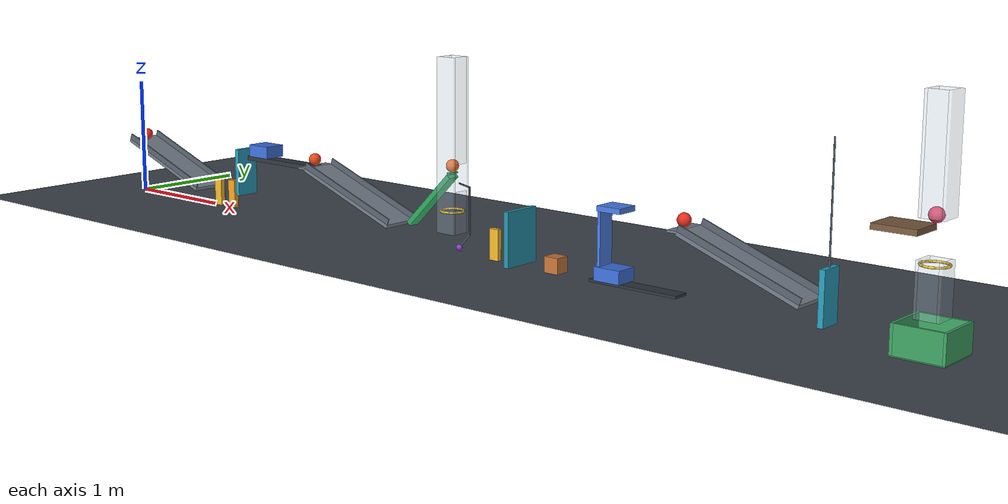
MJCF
<mujoco model="corrected_assisted_chain_reaction">
  <compiler angle="degree" autolimits="true" inertiafromgeom="auto"/>
  <option timestep="0.002" gravity="0 0 -9.81" integrator="implicitfast" solver="Newton" iterations="100" cone="elliptic"/>
  <size njmax="3000" nconmax="1000"/>
  <visual>
    <headlight ambient="0.45 0.45 0.45" diffuse="0.7 0.7 0.7" specular="0.2 0.2 0.2"/>
    <map znear="0.01" zfar="40"/>
  </visual>

  <worldbody>
    <light name="main_light" pos="4 -4 7" dir="0 0 -1" directional="true"/>
    <camera name="overview" pos="4 -10 6" xyaxes="1 0 0 0 0.45 0.893"/>
    <geom name="floor" type="plane" size="12 5 0.1" friction="0.70 0.001 0.0001" condim="3" solref="0.006 0.6901" solimp="0.95 0.99 0.001" rgba="0.25 0.28 0.31 1"/>

    <body name="ramp1" pos="0 0 0.492020143" quat="0.984807753 0 0.173648178 0">
      <geom name="ramp1_surface" type="box" pos="0.5 0 -0.015" size="0.50 0.15 0.015" friction="0.70 0.001 0.0001" condim="3" solref="0.006 0.6901" solimp="0.95 0.99 0.001" rgba="0.45 0.49 0.54 1"/>
      <geom name="ramp1_left_curb" type="box" pos="0.5 0.145 0.025" size="0.50 0.005 0.025" friction="0.70 0.001 0.0001" condim="3" solref="0.006 0.6901" solimp="0.95 0.99 0.001" rgba="0.35 0.39 0.44 1"/>
      <geom name="ramp1_right_curb" type="box" pos="0.5 -0.145 0.025" size="0.50 0.005 0.025" friction="0.70 0.001 0.0001" condim="3" solref="0.006 0.6901" solimp="0.95 0.99 0.001" rgba="0.35 0.39 0.44 1"/>
    </body>

    <body name="ball1" pos="0.054688715 0 0.525324168">
      <freejoint name="ball1_free"/>
      <geom name="ball1_sphere" type="sphere" size="0.05" mass="0.20" friction="0.70 0.001 0.0001" condim="3" solref="0.006 0.6901" solimp="0.95 0.99 0.001" rgba="0.90 0.18 0.12 1"/>
    </body>

    <!-- Ramp1 exit to domino1's near face: 0.10 m.
         Domino1 to domino2 centre spacing: 0.18 m. -->
    <body name="domino1" pos="1.079692621 0 0.12">
      <freejoint name="domino1_free"/>
      <geom name="domino1_box" type="box" size="0.04 0.02 0.12" mass="0.25" friction="0.70 0.001 0.0001" condim="3" solref="0.006 0.6901" solimp="0.95 0.99 0.001" rgba="0.95 0.72 0.16 1"/>
    </body>

    <body name="domino2" pos="1.259692621 0 0.12">
      <freejoint name="domino2_free"/>
      <geom name="domino2_box" type="box" size="0.04 0.02 0.12" mass="0.25" friction="0.70 0.001 0.0001" condim="3" solref="0.006 0.6901" solimp="0.95 0.99 0.001" rgba="0.95 0.64 0.12 1"/>
    </body>

    <!-- Clockwise viewed from above. The panel's lower half receives
         domino2 and its upper portion strikes cart1. -->
    <body name="flap1" pos="1.439692621 -0.10 0.34">
      <joint name="flap1_hinge" type="hinge" axis="0 0 -1" range="0 65" damping="0.04" armature="0.0001" solreflimit="0.004 1"/>
      <geom name="flap1_panel" type="box" pos="0 0.10 0" size="0.02 0.10 0.20" mass="0.30" friction="0.70 0.001 0.0001" condim="3" solref="0.006 0.6901" solimp="0.95 0.99 0.001" rgba="0.15 0.62 0.74 1"/>
    </body>

    <!-- Raised enough to clear ramp2's horizontal landing.
         Initial front-face-to-ball separation is 0.45 m. -->
    <body name="cart1" pos="1.709692621 0 0.550020143">
      <joint name="cart1_slide" type="slide" axis="1 0 0" range="0 0.53" damping="0.20" solreflimit="0.004 1"/>
      <geom name="cart1_box" type="box" size="0.11 0.09 0.05" mass="0.50" friction="0.70 0.001 0.0001" condim="3" solref="0.006 0.6901" solimp="0.95 0.99 0.001" rgba="0.24 0.44 0.86 1"/>
    </body>

    <body name="cart1_track" pos="1.934692621 0 0.475">
      <geom name="cart1_track_beam" type="box" size="0.40 0.06 0.018" contype="0" conaffinity="0" friction="0.70 0.001 0.0001" rgba="0.18 0.21 0.25 1"/>
    </body>

    <body name="ramp2" pos="2.359692621 0 0.492020143" quat="0.984807753 0 0.173648178 0">
      <geom name="ramp2_surface" type="box" pos="0.5 0 -0.015" size="0.50 0.15 0.015" friction="0.70 0.001 0.0001" condim="3" solref="0.006 0.6901" solimp="0.95 0.99 0.001" rgba="0.45 0.49 0.54 1"/>
      <geom name="ramp2_high_landing" type="box" pos="-0.034851544 0 -0.021198347" quat="0.984807753 0 -0.173648178 0" size="0.04 0.15 0.008" friction="0.70 0.001 0.0001" condim="3" solref="0.006 0.6901" solimp="0.95 0.99 0.001" rgba="0.45 0.49 0.54 1"/>
      <geom name="ramp2_left_curb" type="box" pos="0.5 0.145 0.025" size="0.50 0.005 0.025" friction="0.70 0.001 0.0001" condim="3" solref="0.006 0.6901" solimp="0.95 0.99 0.001" rgba="0.35 0.39 0.44 1"/>
      <geom name="ramp2_right_curb" type="box" pos="0.5 -0.145 0.025" size="0.50 0.005 0.025" friction="0.70 0.001 0.0001" condim="3" solref="0.006 0.6901" solimp="0.95 0.99 0.001" rgba="0.35 0.39 0.44 1"/>
    </body>

    <body name="ball2" pos="2.319692621 0 0.542020143">
      <freejoint name="ball2_free"/>
      <geom name="ball2_sphere" type="sphere" size="0.05" mass="0.20" friction="0.70 0.001 0.0001" condim="3" solref="0.006 0.6901" solimp="0.95 0.99 0.001" rgba="0.90 0.28 0.12 1"/>
    </body>

    <body name="lever1" pos="3.645659412 0 0.377132034" quat="0.923879533 0 -0.382683432 0">
      <inertial pos="0 0 0" mass="0.50" diaginertia="0.000483333 0.015066667 0.015416667"/>
      <joint name="lever1_hinge" type="hinge" axis="0 -1 0" range="0 45" damping="0.04" armature="0.0001" solreflimit="0.004 1"/>
      <geom name="lever1_beam" type="box" size="0.30 0.05 0.02" friction="0.70 0.001 0.0001" condim="3" solref="0.006 0.6901" solimp="0.95 0.99 0.001" rgba="0.18 0.66 0.36 1"/>
      <geom name="lever1_launch_pad" type="box" pos="0.315556349 0 0.015556349" quat="0.923879533 0 0.382683432 0" size="0.015 0.045 0.006" friction="0.70 0.001 0.0001" condim="3" solref="0.006 0.6901" solimp="0.95 0.99 0.001" rgba="0.24 0.76 0.42 1"/>
    </body>

    <body name="ball3" pos="3.857791446 0 0.667264068">
      <freejoint name="ball3_free"/>
      <geom name="ball3_sphere" type="sphere" size="0.05" mass="0.20" friction="0.70 0.001 0.0001" condim="3" solref="0.006 0.6901" solimp="0.95 0.99 0.001" rgba="0.96 0.42 0.13 1"/>
    </body>

    <!-- Split x guides clear the lever and launch pad.
         The pendulum's bent rod passes outside these guides. -->
    <body name="ball3_guides" pos="3.857791446 0 0">
      <geom name="ball3_guides_y_positive" type="box" pos="0 0.075 0.825" size="0.085 0.010 0.675" friction="0.70 0.001 0.0001" condim="3" solref="0.006 0.6901" solimp="0.95 0.99 0.001" rgba="0.70 0.78 0.86 0.28"/>
      <geom name="ball3_guides_y_negative" type="box" pos="0 -0.075 0.825" size="0.085 0.010 0.675" friction="0.70 0.001 0.0001" condim="3" solref="0.006 0.6901" solimp="0.95 0.99 0.001" rgba="0.70 0.78 0.86 0.28"/>
      <geom name="ball3_guides_x_positive_upper" type="box" pos="0.075 0 1.095" size="0.010 0.065 0.405" friction="0.70 0.001 0.0001" condim="3" solref="0.006 0.6901" solimp="0.95 0.99 0.001" rgba="0.70 0.78 0.86 0.28"/>
      <geom name="ball3_guides_x_negative_upper" type="box" pos="-0.075 0 1.095" size="0.010 0.065 0.405" friction="0.70 0.001 0.0001" condim="3" solref="0.006 0.6901" solimp="0.95 0.99 0.001" rgba="0.70 0.78 0.86 0.28"/>
      <geom name="ball3_guides_x_positive_lower" type="box" pos="0.075 0 0.3125" size="0.010 0.065 0.1625" friction="0.70 0.001 0.0001" condim="3" solref="0.006 0.6901" solimp="0.95 0.99 0.001" rgba="0.70 0.78 0.86 0.28"/>
      <geom name="ball3_guides_x_negative_lower" type="box" pos="-0.075 0 0.3125" size="0.010 0.065 0.1625" friction="0.70 0.001 0.0001" condim="3" solref="0.006 0.6901" solimp="0.95 0.99 0.001" rgba="0.70 0.78 0.86 0.28"/>
    </body>

    <!-- Ring1 is 0.35 m below ball3's initial centre. -->
    <body name="ring1" pos="3.857791446 0 0.317264068">
      <geom name="ring1_segment01" type="capsule" fromto="0.089725 0 0 0.082894 0.034336 0" size="0.008" friction="0.70 0.001 0.0001" condim="3" solref="0.006 0.6901" solimp="0.95 0.99 0.001" rgba="0.95 0.80 0.20 1"/>
      <geom name="ring1_segment02" type="capsule" fromto="0.082894 0.034336 0 0.063446 0.063446 0" size="0.008" friction="0.70 0.001 0.0001" condim="3" solref="0.006 0.6901" solimp="0.95 0.99 0.001" rgba="0.95 0.80 0.20 1"/>
      <geom name="ring1_segment03" type="capsule" fromto="0.063446 0.063446 0 0.034336 0.082894 0" size="0.008" friction="0.70 0.001 0.0001" condim="3" solref="0.006 0.6901" solimp="0.95 0.99 0.001" rgba="0.95 0.80 0.20 1"/>
      <geom name="ring1_segment04" type="capsule" fromto="0.034336 0.082894 0 0 0.089725 0" size="0.008" friction="0.70 0.001 0.0001" condim="3" solref="0.006 0.6901" solimp="0.95 0.99 0.001" rgba="0.95 0.80 0.20 1"/>
      <geom name="ring1_segment05" type="capsule" fromto="0 0.089725 0 -0.034336 0.082894 0" size="0.008" friction="0.70 0.001 0.0001" condim="3" solref="0.006 0.6901" solimp="0.95 0.99 0.001" rgba="0.95 0.80 0.20 1"/>
      <geom name="ring1_segment06" type="capsule" fromto="-0.034336 0.082894 0 -0.063446 0.063446 0" size="0.008" friction="0.70 0.001 0.0001" condim="3" solref="0.006 0.6901" solimp="0.95 0.99 0.001" rgba="0.95 0.80 0.20 1"/>
      <geom name="ring1_segment07" type="capsule" fromto="-0.063446 0.063446 0 -0.082894 0.034336 0" size="0.008" friction="0.70 0.001 0.0001" condim="3" solref="0.006 0.6901" solimp="0.95 0.99 0.001" rgba="0.95 0.80 0.20 1"/>
      <geom name="ring1_segment08" type="capsule" fromto="-0.082894 0.034336 0 -0.089725 0 0" size="0.008" friction="0.70 0.001 0.0001" condim="3" solref="0.006 0.6901" solimp="0.95 0.99 0.001" rgba="0.95 0.80 0.20 1"/>
      <geom name="ring1_segment09" type="capsule" fromto="-0.089725 0 0 -0.082894 -0.034336 0" size="0.008" friction="0.70 0.001 0.0001" condim="3" solref="0.006 0.6901" solimp="0.95 0.99 0.001" rgba="0.95 0.80 0.20 1"/>
      <geom name="ring1_segment10" type="capsule" fromto="-0.082894 -0.034336 0 -0.063446 -0.063446 0" size="0.008" friction="0.70 0.001 0.0001" condim="3" solref="0.006 0.6901" solimp="0.95 0.99 0.001" rgba="0.95 0.80 0.20 1"/>
      <geom name="ring1_segment11" type="capsule" fromto="-0.063446 -0.063446 0 -0.034336 -0.082894 0" size="0.008" friction="0.70 0.001 0.0001" condim="3" solref="0.006 0.6901" solimp="0.95 0.99 0.001" rgba="0.95 0.80 0.20 1"/>
      <geom name="ring1_segment12" type="capsule" fromto="-0.034336 -0.082894 0 0 -0.089725 0" size="0.008" friction="0.70 0.001 0.0001" condim="3" solref="0.006 0.6901" solimp="0.95 0.99 0.001" rgba="0.95 0.80 0.20 1"/>
      <geom name="ring1_segment13" type="capsule" fromto="0 -0.089725 0 0.034336 -0.082894 0" size="0.008" friction="0.70 0.001 0.0001" condim="3" solref="0.006 0.6901" solimp="0.95 0.99 0.001" rgba="0.95 0.80 0.20 1"/>
      <geom name="ring1_segment14" type="capsule" fromto="0.034336 -0.082894 0 0.063446 -0.063446 0" size="0.008" friction="0.70 0.001 0.0001" condim="3" solref="0.006 0.6901" solimp="0.95 0.99 0.001" rgba="0.95 0.80 0.20 1"/>
      <geom name="ring1_segment15" type="capsule" fromto="0.063446 -0.063446 0 0.082894 -0.034336 0" size="0.008" friction="0.70 0.001 0.0001" condim="3" solref="0.006 0.6901" solimp="0.95 0.99 0.001" rgba="0.95 0.80 0.20 1"/>
      <geom name="ring1_segment16" type="capsule" fromto="0.082894 -0.034336 0 0.089725 0 0" size="0.008" friction="0.70 0.001 0.0001" condim="3" solref="0.006 0.6901" solimp="0.95 0.99 0.001" rgba="0.95 0.80 0.20 1"/>
    </body>

    <body name="pendulum1" pos="3.927791446 0 0.540338244">
      <joint name="pendulum1_hinge" type="hinge" axis="0 -1 0" range="0 40" damping="0.04" armature="0.0001" solreflimit="0.004 1"/>
      <geom name="pendulum1_rod_upper" type="capsule" fromto="0 0 0 0 0.12 -0.05" size="0.006" mass="0.005" friction="0.70 0.001 0.0001" condim="3" solref="0.006 0.6901" solimp="0.95 0.99 0.001" rgba="0.34 0.37 0.42 1"/>
      <geom name="pendulum1_rod_middle" type="capsule" fromto="0 0.12 -0.05 0 0.12 -0.42" size="0.006" mass="0.040" friction="0.70 0.001 0.0001" condim="3" solref="0.006 0.6901" solimp="0.95 0.99 0.001" rgba="0.34 0.37 0.42 1"/>
      <geom name="pendulum1_rod_lower" type="capsule" fromto="0 0.12 -0.42 0 0 -0.50" size="0.006" mass="0.005" friction="0.70 0.001 0.0001" condim="3" solref="0.006 0.6901" solimp="0.95 0.99 0.001" rgba="0.34 0.37 0.42 1"/>
      <geom name="pendulum1_bob" type="sphere" pos="0 0 -0.50" size="0.025" mass="0.300" friction="0.70 0.001 0.0001" condim="3" solref="0.006 0.6901" solimp="0.95 0.99 0.001" rgba="0.52 0.25 0.75 1"/>
    </body>

    <!-- Nominal bob contact with the upright domino occurs after
         0.32 m of bob-centre arc travel, at hinge angle 0.64 radians. -->
    <body name="domino3" pos="4.291389167 0 0.12">
      <freejoint name="domino3_free"/>
      <geom name="domino3_box" type="box" size="0.04 0.02 0.12" mass="0.25" friction="0.70 0.001 0.0001" condim="3" solref="0.006 0.6901" solimp="0.95 0.99 0.001" rgba="0.95 0.72 0.16 1"/>
    </body>

    <!-- Initial surface-to-surface domino3-to-door1 gap: 0.18 m. -->
    <body name="door1" pos="4.531389167 -0.16 0.213">
      <joint name="door1_hinge" type="hinge" axis="0 0 -1" range="0 70" damping="0.04" armature="0.0001" solreflimit="0.004 1"/>
      <geom name="door1_panel" type="box" pos="0 0.16 0" size="0.02 0.16 0.21" mass="0.45" friction="0.70 0.001 0.0001" condim="3" solref="0.006 0.6901" solimp="0.95 0.99 0.001" rgba="0.14 0.57 0.68 1"/>
    </body>

    <body name="block1" pos="4.871389167 0 0.06">
      <freejoint name="block1_free"/>
      <geom name="block1_cube" type="box" size="0.06 0.06 0.06" mass="0.35" friction="0.70 0.001 0.0001" condim="3" solref="0.006 0.6901" solimp="0.95 0.99 0.001" rgba="0.77 0.46 0.22 1"/>
    </body>

    <body name="cart2" pos="5.391389167 0 0.075">
      <inertial pos="0 0 0" mass="0.50" diaginertia="0.001766667 0.002433333 0.003366667"/>
      <joint name="cart2_slide" type="slide" axis="1 0 0" range="0 0.50" damping="0.20" solreflimit="0.004 1"/>
      <geom name="cart2_box" type="box" size="0.11 0.09 0.05" friction="0.70 0.001 0.0001" condim="3" solref="0.006 0.6901" solimp="0.95 0.99 0.001" rgba="0.24 0.44 0.86 1"/>
      <geom name="cart2_pusher_mast" type="box" pos="-0.085 0 0.235" size="0.012 0.07 0.24" friction="0.70 0.001 0.0001" condim="3" solref="0.006 0.6901" solimp="0.95 0.99 0.001" rgba="0.29 0.49 0.90 1"/>
      <geom name="cart2_pusher_head" type="box" pos="0.01 0 0.47" size="0.10 0.09 0.02" friction="0.70 0.001 0.0001" condim="3" solref="0.006 0.6901" solimp="0.95 0.99 0.001" rgba="0.29 0.49 0.90 1"/>
    </body>

    <body name="cart2_track" pos="5.591389167 0 0.012">
      <geom name="cart2_track_beam" type="box" size="0.37 0.065 0.010" contype="0" conaffinity="0" friction="0.70 0.001 0.0001" rgba="0.18 0.21 0.25 1"/>
    </body>

    <body name="ramp3" pos="6.011389167 0 0.492020143" quat="0.984807753 0 0.173648178 0">
      <geom name="ramp3_surface" type="box" pos="0.5 0 -0.015" size="0.50 0.15 0.015" friction="0.70 0.001 0.0001" condim="3" solref="0.006 0.6901" solimp="0.95 0.99 0.001" rgba="0.45 0.49 0.54 1"/>
      <geom name="ramp3_high_landing" type="box" pos="-0.034851544 0 -0.021198347" quat="0.984807753 0 -0.173648178 0" size="0.04 0.15 0.008" friction="0.70 0.001 0.0001" condim="3" solref="0.006 0.6901" solimp="0.95 0.99 0.001" rgba="0.45 0.49 0.54 1"/>
      <geom name="ramp3_left_curb" type="box" pos="0.5 0.145 0.025" size="0.50 0.005 0.025" friction="0.70 0.001 0.0001" condim="3" solref="0.006 0.6901" solimp="0.95 0.99 0.001" rgba="0.35 0.39 0.44 1"/>
      <geom name="ramp3_right_curb" type="box" pos="0.5 -0.145 0.025" size="0.50 0.005 0.025" friction="0.70 0.001 0.0001" condim="3" solref="0.006 0.6901" solimp="0.95 0.99 0.001" rgba="0.35 0.39 0.44 1"/>
    </body>

    <!-- Cart2 head first reaches ball4 after 0.42 m translation. -->
    <body name="ball4" pos="5.971389167 0 0.542020143">
      <freejoint name="ball4_free"/>
      <geom name="ball4_sphere" type="sphere" size="0.05" mass="0.20" friction="0.70 0.001 0.0001" condim="3" solref="0.006 0.6901" solimp="0.95 0.99 0.001" rgba="0.90 0.18 0.12 1"/>
    </body>

    <!-- Ramp3 exit to the initial flap2 near face: 0.10 m.
         An offset carrier bridges the low exit and elevated shelf.
         The striking panel is 0.38 x 0.18 x 0.04 m and 0.28 kg. -->
    <body name="flap2" pos="7.071081788 0 1.22">
      <joint name="flap2_hinge" type="hinge" axis="0 -1 0" range="0 60" damping="0.04" armature="0.0001" solreflimit="0.004 1"/>
      <geom name="flap2_panel" type="box" pos="0 0 -1.02" size="0.02 0.09 0.19" mass="0.28" friction="0.70 0.001 0.0001" condim="3" solref="0.006 0.6901" solimp="0.95 0.99 0.001" rgba="0.15 0.62 0.74 1"/>
      <geom name="flap2_carrier" type="capsule" fromto="0 0 0 0 0 -0.83" size="0.006" density="0" contype="0" conaffinity="0" friction="0.70 0.001 0.0001" rgba="0.31 0.35 0.40 1"/>
    </body>

    <body name="shelf1" pos="7.675081788 -0.245 0.78">
      <geom name="shelf1_slab" type="box" size="0.15 0.125 0.02" friction="0.70 0.001 0.0001" condim="3" solref="0.006 0.6901" solimp="0.95 0.99 0.001" rgba="0.48 0.36 0.25 1"/>
    </body>

    <body name="ball5" pos="7.821081788 -0.121 0.85">
      <freejoint name="ball5_free"/>
      <geom name="ball5_sphere" type="sphere" size="0.05" mass="0.20" friction="0.70 0.001 0.0001" condim="3" solref="0.006 0.6901" solimp="0.95 0.99 0.001" rgba="0.92 0.23 0.38 1"/>
    </body>

    <!-- The opening between guide sections clears flap2's final sweep. -->
    <body name="ball5_guides" pos="7.828081788 -0.121 0">
      <geom name="ball5_guides_upper_x_positive" type="box" pos="0.075 0 1.2175" size="0.010 0.085 0.3825" friction="0.70 0.001 0.0001" condim="3" solref="0.006 0.6901" solimp="0.95 0.99 0.001" rgba="0.70 0.78 0.86 0.28"/>
      <geom name="ball5_guides_upper_x_negative" type="box" pos="-0.075 0 1.2175" size="0.010 0.085 0.3825" friction="0.70 0.001 0.0001" condim="3" solref="0.006 0.6901" solimp="0.95 0.99 0.001" rgba="0.70 0.78 0.86 0.28"/>
      <geom name="ball5_guides_upper_y_positive" type="box" pos="0 0.075 1.2175" size="0.065 0.010 0.3825" friction="0.70 0.001 0.0001" condim="3" solref="0.006 0.6901" solimp="0.95 0.99 0.001" rgba="0.70 0.78 0.86 0.28"/>
      <geom name="ball5_guides_upper_y_negative" type="box" pos="0 -0.075 1.2175" size="0.065 0.010 0.3825" friction="0.70 0.001 0.0001" condim="3" solref="0.006 0.6901" solimp="0.95 0.99 0.001" rgba="0.70 0.78 0.86 0.28"/>
      <geom name="ball5_guides_lower_x_positive" type="box" pos="0.075 0 0.40" size="0.010 0.085 0.18" friction="0.70 0.001 0.0001" condim="3" solref="0.006 0.6901" solimp="0.95 0.99 0.001" rgba="0.70 0.78 0.86 0.28"/>
      <geom name="ball5_guides_lower_x_negative" type="box" pos="-0.075 0 0.40" size="0.010 0.085 0.18" friction="0.70 0.001 0.0001" condim="3" solref="0.006 0.6901" solimp="0.95 0.99 0.001" rgba="0.70 0.78 0.86 0.28"/>
      <geom name="ball5_guides_lower_y_positive" type="box" pos="0 0.075 0.40" size="0.065 0.010 0.18" friction="0.70 0.001 0.0001" condim="3" solref="0.006 0.6901" solimp="0.95 0.99 0.001" rgba="0.70 0.78 0.86 0.28"/>
      <geom name="ball5_guides_lower_y_negative" type="box" pos="0 -0.075 0.40" size="0.065 0.010 0.18" friction="0.70 0.001 0.0001" condim="3" solref="0.006 0.6901" solimp="0.95 0.99 0.001" rgba="0.70 0.78 0.86 0.28"/>
    </body>

    <!-- Ring2 is 0.30 m below ball5's initial centre. -->
    <body name="ring2" pos="7.828081788 -0.121 0.55">
      <geom name="ring2_segment01" type="capsule" fromto="0.089725 0 0 0.082894 0.034336 0" size="0.008" friction="0.70 0.001 0.0001" condim="3" solref="0.006 0.6901" solimp="0.95 0.99 0.001" rgba="0.95 0.80 0.20 1"/>
      <geom name="ring2_segment02" type="capsule" fromto="0.082894 0.034336 0 0.063446 0.063446 0" size="0.008" friction="0.70 0.001 0.0001" condim="3" solref="0.006 0.6901" solimp="0.95 0.99 0.001" rgba="0.95 0.80 0.20 1"/>
      <geom name="ring2_segment03" type="capsule" fromto="0.063446 0.063446 0 0.034336 0.082894 0" size="0.008" friction="0.70 0.001 0.0001" condim="3" solref="0.006 0.6901" solimp="0.95 0.99 0.001" rgba="0.95 0.80 0.20 1"/>
      <geom name="ring2_segment04" type="capsule" fromto="0.034336 0.082894 0 0 0.089725 0" size="0.008" friction="0.70 0.001 0.0001" condim="3" solref="0.006 0.6901" solimp="0.95 0.99 0.001" rgba="0.95 0.80 0.20 1"/>
      <geom name="ring2_segment05" type="capsule" fromto="0 0.089725 0 -0.034336 0.082894 0" size="0.008" friction="0.70 0.001 0.0001" condim="3" solref="0.006 0.6901" solimp="0.95 0.99 0.001" rgba="0.95 0.80 0.20 1"/>
      <geom name="ring2_segment06" type="capsule" fromto="-0.034336 0.082894 0 -0.063446 0.063446 0" size="0.008" friction="0.70 0.001 0.0001" condim="3" solref="0.006 0.6901" solimp="0.95 0.99 0.001" rgba="0.95 0.80 0.20 1"/>
      <geom name="ring2_segment07" type="capsule" fromto="-0.063446 0.063446 0 -0.082894 0.034336 0" size="0.008" friction="0.70 0.001 0.0001" condim="3" solref="0.006 0.6901" solimp="0.95 0.99 0.001" rgba="0.95 0.80 0.20 1"/>
      <geom name="ring2_segment08" type="capsule" fromto="-0.082894 0.034336 0 -0.089725 0 0" size="0.008" friction="0.70 0.001 0.0001" condim="3" solref="0.006 0.6901" solimp="0.95 0.99 0.001" rgba="0.95 0.80 0.20 1"/>
      <geom name="ring2_segment09" type="capsule" fromto="-0.089725 0 0 -0.082894 -0.034336 0" size="0.008" friction="0.70 0.001 0.0001" condim="3" solref="0.006 0.6901" solimp="0.95 0.99 0.001" rgba="0.95 0.80 0.20 1"/>
      <geom name="ring2_segment10" type="capsule" fromto="-0.082894 -0.034336 0 -0.063446 -0.063446 0" size="0.008" friction="0.70 0.001 0.0001" condim="3" solref="0.006 0.6901" solimp="0.95 0.99 0.001" rgba="0.95 0.80 0.20 1"/>
      <geom name="ring2_segment11" type="capsule" fromto="-0.063446 -0.063446 0 -0.034336 -0.082894 0" size="0.008" friction="0.70 0.001 0.0001" condim="3" solref="0.006 0.6901" solimp="0.95 0.99 0.001" rgba="0.95 0.80 0.20 1"/>
      <geom name="ring2_segment12" type="capsule" fromto="-0.034336 -0.082894 0 0 -0.089725 0" size="0.008" friction="0.70 0.001 0.0001" condim="3" solref="0.006 0.6901" solimp="0.95 0.99 0.001" rgba="0.95 0.80 0.20 1"/>
      <geom name="ring2_segment13" type="capsule" fromto="0 -0.089725 0 0.034336 -0.082894 0" size="0.008" friction="0.70 0.001 0.0001" condim="3" solref="0.006 0.6901" solimp="0.95 0.99 0.001" rgba="0.95 0.80 0.20 1"/>
      <geom name="ring2_segment14" type="capsule" fromto="0.034336 -0.082894 0 0.063446 -0.063446 0" size="0.008" friction="0.70 0.001 0.0001" condim="3" solref="0.006 0.6901" solimp="0.95 0.99 0.001" rgba="0.95 0.80 0.20 1"/>
      <geom name="ring2_segment15" type="capsule" fromto="0.063446 -0.063446 0 0.082894 -0.034336 0" size="0.008" friction="0.70 0.001 0.0001" condim="3" solref="0.006 0.6901" solimp="0.95 0.99 0.001" rgba="0.95 0.80 0.20 1"/>
      <geom name="ring2_segment16" type="capsule" fromto="0.082894 -0.034336 0 0.089725 0 0" size="0.008" friction="0.70 0.001 0.0001" condim="3" solref="0.006 0.6901" solimp="0.95 0.99 0.001" rgba="0.95 0.80 0.20 1"/>
    </body>

    <!-- Inner footprint 0.32 x 0.32 m.
         Walls are 0.20 m high and 0.02 m thick.
         Ring2 is 0.35 m above the bin rim. -->
    <body name="bin1" pos="7.828081788 -0.121 0">
      <geom name="bin1_base" type="box" pos="0 0 -0.01" size="0.18 0.18 0.01" friction="0.70 0.001 0.0001" condim="3" solref="0.006 0.6901" solimp="0.95 0.99 0.001" rgba="0.20 0.55 0.33 1"/>
      <geom name="bin1_wall_x_positive" type="box" pos="0.17 0 0.10" size="0.01 0.18 0.10" friction="0.70 0.001 0.0001" condim="3" solref="0.006 0.6901" solimp="0.95 0.99 0.001" rgba="0.24 0.64 0.39 1"/>
      <geom name="bin1_wall_x_negative" type="box" pos="-0.17 0 0.10" size="0.01 0.18 0.10" friction="0.70 0.001 0.0001" condim="3" solref="0.006 0.6901" solimp="0.95 0.99 0.001" rgba="0.24 0.64 0.39 1"/>
      <geom name="bin1_wall_y_positive" type="box" pos="0 0.17 0.10" size="0.16 0.01 0.10" friction="0.70 0.001 0.0001" condim="3" solref="0.006 0.6901" solimp="0.95 0.99 0.001" rgba="0.24 0.64 0.39 1"/>
      <geom name="bin1_wall_y_negative" type="box" pos="0 -0.17 0.10" size="0.16 0.01 0.10" friction="0.70 0.001 0.0001" condim="3" solref="0.006 0.6901" solimp="0.95 0.99 0.001" rgba="0.24 0.64 0.39 1"/>
    </body>
  </worldbody>

  <actuator>
    <general name="flap1_impact_assist" joint="flap1_hinge" gaintype="fixed" gainprm="0" biastype="affine" biasprm="0 3 0"/>
    <general name="lever1_balance_and_assist" joint="lever1_hinge" gaintype="fixed" gainprm="0" biastype="affine" biasprm="0.416203051 1.5 0"/>
    <general name="pendulum1_impact_assist" joint="pendulum1_hinge" gaintype="fixed" gainprm="0" biastype="affine" biasprm="0 3 0"/>
    <general name="door1_impact_assist" joint="door1_hinge" gaintype="fixed" gainprm="0" biastype="affine" biasprm="0 12 0"/>
    <general name="flap2_impact_assist" joint="flap2_hinge" gaintype="fixed" gainprm="0" biastype="affine" biasprm="0 8 0"/>
  </actuator>

  <keyframe>
    <key name="start" time="0" ctrl="0 0 0 0 0"/>
  </keyframe>
</mujoco>
